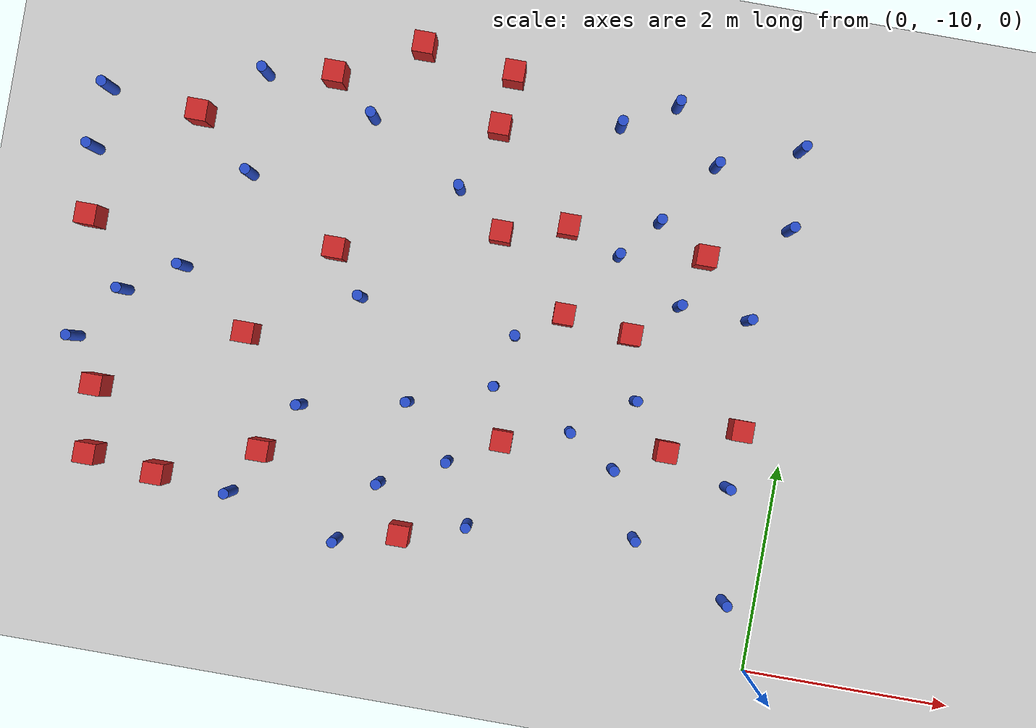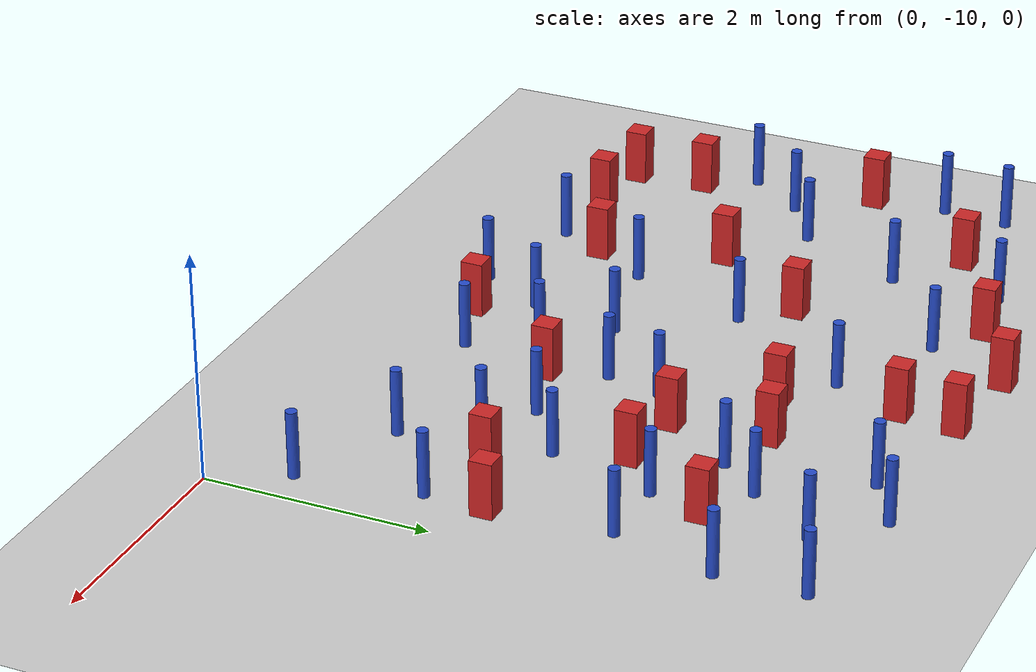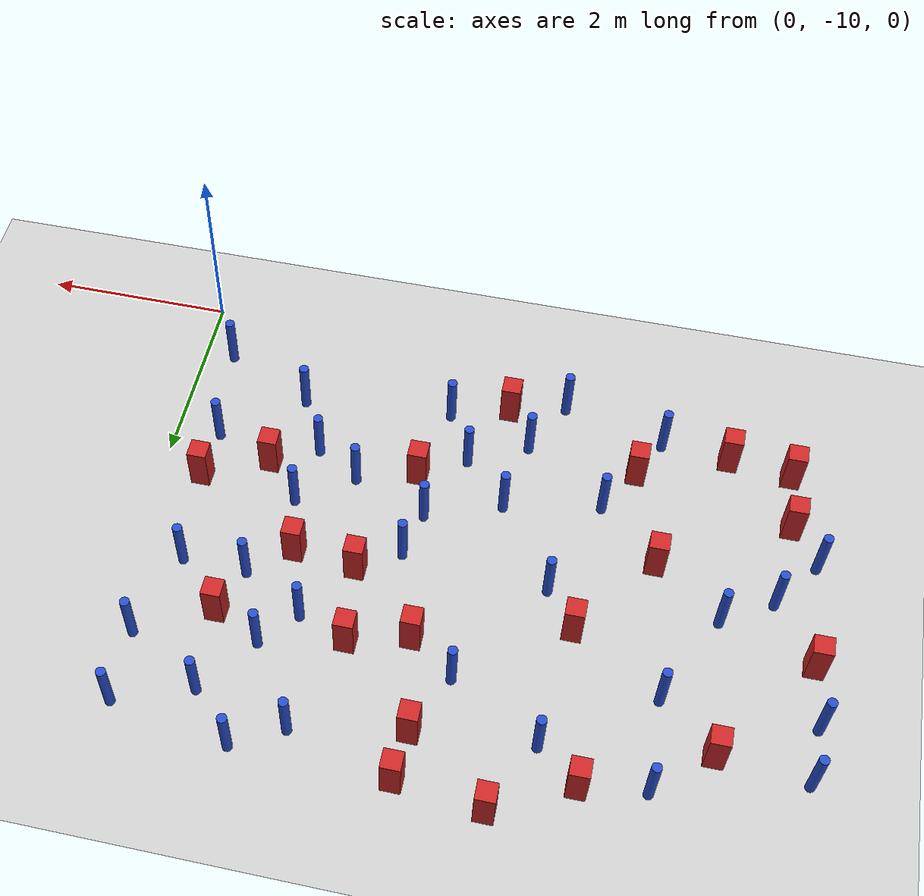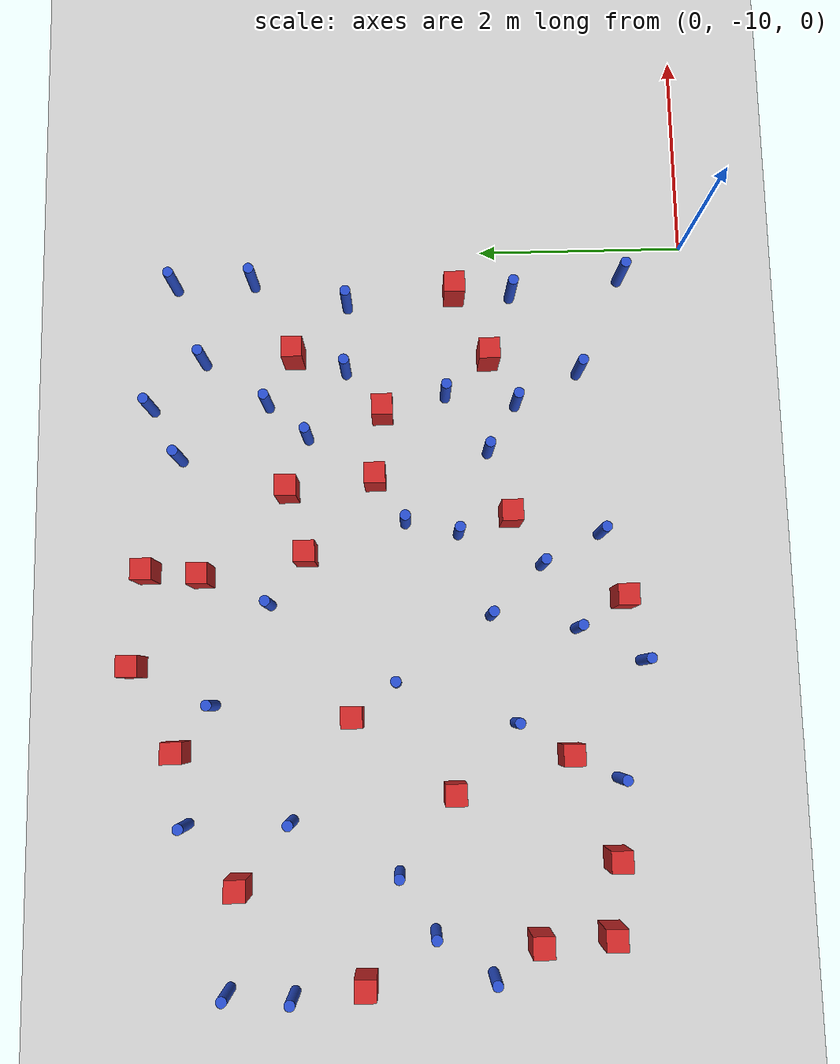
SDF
<sdf version="1.6">
 <world name="default">
  <model name="ground_plane">
   <static>1</static>
   <link name="link">
    <collision name="collision">
     <geometry><plane><normal>0 0 1</normal><size>100 100</size></plane></geometry>
     <surface><friction><ode><mu>100</mu><mu2>50</mu2></ode></friction></surface>
    </collision>
    <visual name="visual">
     <cast_shadows>0</cast_shadows>
     <geometry><plane><normal>0 0 1</normal><size>100 100</size></plane></geometry>
     <material>
      <ambient>1.0 1.0 1.0 1.0</ambient>
      <diffuse>0.8 0.8 0.8 1.0</diffuse>
      <specular>0.01 0.01 0.01 1.000000</specular>
     </material>
    </visual>
   </link>
  </model>
  <model name="pole_obstacle2">
   <static>true</static>
   <pose>-2.07227371819 -5.04771171933 7.38925637345e-09 -8.47170692798e-08 1.24976765033e-08 -1.74513093019e-07</pose>
   <link name="link">
    <pose>0 0 0.3 0 -0 0</pose>
    <inertial>
     <mass>1</mass>
     <inertia><ixx>0.145833</ixx><ixy>0</ixy><ixz>0</ixz><iyy>0.145833</iyy><iyz>0</iyz><izz>0.125</izz></inertia>
    </inertial>
    <collision name="collision">
     <geometry><cylinder><radius>0.05</radius><length>.6</length></cylinder></geometry>
    </collision>
    <visual name="visual">
     <geometry><cylinder><radius>0.05</radius><length>.6</length></cylinder></geometry>
     <material>
      <script><name>Gazebo/Blue</name><uri>file://media/materials/scripts/gazebo.material</uri></script>
     </material>
    </visual>
   </link>
  </model>
  <model name="pole_obstacle4">
   <static>true</static>
   <pose>-1.27591445963 -8.91077670129 7.38925637345e-09 -8.47170692798e-08 1.24976764881e-08 -1.74513093027e-07</pose>
   <link name="link">
    <pose>0 0 0.3 0 -0 0</pose>
    <inertial>
     <mass>1</mass>
     <inertia><ixx>0.145833</ixx><ixy>0</ixy><ixz>0</ixz><iyy>0.145833</iyy><iyz>0</iyz><izz>0.125</izz></inertia>
    </inertial>
    <collision name="collision">
     <geometry><cylinder><radius>0.05</radius><length>.6</length></cylinder></geometry>
    </collision>
    <visual name="visual">
     <geometry><cylinder><radius>0.05</radius><length>.6</length></cylinder></geometry>
     <material>
      <script><name>Gazebo/Blue</name><uri>file://media/materials/scripts/gazebo.material</uri></script>
     </material>
    </visual>
   </link>
  </model>
  <model name="pole_obstacle6">
   <static>true</static>
   <pose>-4.41659164661 -5.37724809579 7.38925637345e-09 -8.47170692796e-08 1.24976764786e-08 -1.74513093032e-07</pose>
   <link name="link">
    <pose>0 0 0.3 0 -0 0</pose>
    <inertial>
     <mass>1</mass>
     <inertia><ixx>0.145833</ixx><ixy>0</ixy><ixz>0</ixz><iyy>0.145833</iyy><iyz>0</iyz><izz>0.125</izz></inertia>
    </inertial>
    <collision name="collision">
     <geometry><cylinder><radius>0.05</radius><length>.6</length></cylinder></geometry>
    </collision>
    <visual name="visual">
     <geometry><cylinder><radius>0.05</radius><length>.6</length></cylinder></geometry>
     <material>
      <script><name>Gazebo/Blue</name><uri>file://media/materials/scripts/gazebo.material</uri></script>
     </material>
    </visual>
   </link>
  </model>
  <model name="square_post_obstacle10">
   <static>true</static>
   <pose>-1.11626901914 -8.03755662252 1.91545236811e-07 -7.35059704564e-06 1.12565212e-07 2.39332434364e-05</pose>
   <link name="link">
    <pose>0 0 0.25 0 -0 0</pose>
    <inertial>
     <mass>100</mass>
     <inertia>
      <ixx>0.166667</ixx>
      <ixy>0</ixy>
      <ixz>0</ixz>
      <iyy>0.166667</iyy>
      <iyz>0</iyz>
      <izz>0.166667</izz>
     </inertia>
    </inertial>
    <collision name="collision"><geometry><box><size>.2 .2 .5</size></box></geometry></collision>
    <visual name="visual">
     <geometry><box><size>.2 .2 .5</size></box></geometry>
     <material>
      <script><name>Gazebo/Red</name><uri>file://media/materials/scripts/gazebo.material</uri></script>
     </material>
    </visual>
   </link>
  </model>
  <model name="pole_obstacle11">
   <static>true</static>
   <pose>-1.58580821269 -8.29424901346 7.38925637345e-09 -8.47170692798e-08 1.24976764881e-08 -1.74513093027e-07</pose>
   <link name="link">
    <pose>0 0 0.3 0 -0 0</pose>
    <inertial>
     <mass>1</mass>
     <inertia><ixx>0.145833</ixx><ixy>0</ixy><ixz>0</ixz><iyy>0.145833</iyy><iyz>0</iyz><izz>0.125</izz></inertia>
    </inertial>
    <collision name="collision">
     <geometry><cylinder><radius>0.05</radius><length>.6</length></cylinder></geometry>
    </collision>
    <visual name="visual">
     <geometry><cylinder><radius>0.05</radius><length>.6</length></cylinder></geometry>
     <material>
      <script><name>Gazebo/Blue</name><uri>file://media/materials/scripts/gazebo.material</uri></script>
     </material>
    </visual>
   </link>
  </model>
  <model name="square_post_obstacle20">
   <static>true</static>
   <pose>-6.57853312437 -8.34904074265 1.91545236811e-07 -7.35059704564e-06 1.12565212e-07 2.39332434364e-05</pose>
   <link name="link">
    <pose>0 0 0.25 0 -0 0</pose>
    <inertial>
     <mass>100</mass>
     <inertia>
      <ixx>0.166667</ixx>
      <ixy>0</ixy>
      <ixz>0</ixz>
      <iyy>0.166667</iyy>
      <iyz>0</iyz>
      <izz>0.166667</izz>
     </inertia>
    </inertial>
    <collision name="collision"><geometry><box><size>.2 .2 .5</size></box></geometry></collision>
    <visual name="visual">
     <geometry><box><size>.2 .2 .5</size></box></geometry>
     <material>
      <script><name>Gazebo/Red</name><uri>file://media/materials/scripts/gazebo.material</uri></script>
     </material>
    </visual>
   </link>
  </model>
  <model name="pole_obstacle23">
   <static>true</static>
   <pose>-1.10968277763 -5.27178096615 7.38925637345e-09 -8.47170692799e-08 1.24976765033e-08 -1.74513093018e-07</pose>
   <link name="link">
    <pose>0 0 0.3 0 -0 0</pose>
    <inertial>
     <mass>1</mass>
     <inertia><ixx>0.145833</ixx><ixy>0</ixy><ixz>0</ixz><iyy>0.145833</iyy><iyz>0</iyz><izz>0.125</izz></inertia>
    </inertial>
    <collision name="collision">
     <geometry><cylinder><radius>0.05</radius><length>.6</length></cylinder></geometry>
    </collision>
    <visual name="visual">
     <geometry><cylinder><radius>0.05</radius><length>.6</length></cylinder></geometry>
     <material>
      <script><name>Gazebo/Blue</name><uri>file://media/materials/scripts/gazebo.material</uri></script>
     </material>
    </visual>
   </link>
  </model>
  <model name="pole_obstacle25">
   <static>true</static>
   <pose>-2.72447097869 -7.20253280972 7.38925637345e-09 -8.47170692798e-08 1.24976765033e-08 -1.74513093019e-07</pose>
   <link name="link">
    <pose>0 0 0.3 0 -0 0</pose>
    <inertial>
     <mass>1</mass>
     <inertia><ixx>0.145833</ixx><ixy>0</ixy><ixz>0</ixz><iyy>0.145833</iyy><iyz>0</iyz><izz>0.125</izz></inertia>
    </inertial>
    <collision name="collision">
     <geometry><cylinder><radius>0.05</radius><length>.6</length></cylinder></geometry>
    </collision>
    <visual name="visual">
     <geometry><cylinder><radius>0.05</radius><length>.6</length></cylinder></geometry>
     <material>
      <script><name>Gazebo/Blue</name><uri>file://media/materials/scripts/gazebo.material</uri></script>
     </material>
    </visual>
   </link>
  </model>
  <model name="square_post_obstacle33">
   <static>true</static>
   <pose>-2.67813964452 -8.20671515389 1.91545236811e-07 -7.35059704564e-06 1.12565212e-07 2.39332434364e-05</pose>
   <link name="link">
    <pose>0 0 0.25 0 -0 0</pose>
    <inertial>
     <mass>100</mass>
     <inertia>
      <ixx>0.166667</ixx>
      <ixy>0</ixy>
      <ixz>0</ixz>
      <iyy>0.166667</iyy>
      <iyz>0</iyz>
      <izz>0.166667</izz>
     </inertia>
    </inertial>
    <collision name="collision"><geometry><box><size>.2 .2 .5</size></box></geometry></collision>
    <visual name="visual">
     <geometry><box><size>.2 .2 .5</size></box></geometry>
     <material>
      <script><name>Gazebo/Red</name><uri>file://media/materials/scripts/gazebo.material</uri></script>
     </material>
    </visual>
   </link>
  </model>
  <model name="pole_obstacle34">
   <static>true</static>
   <pose>-0.31500901669 -5.75066021002 7.38925637345e-09 -8.471706928e-08 1.24976765079e-08 -1.74513093015e-07</pose>
   <link name="link">
    <pose>0 0 0.3 0 -0 0</pose>
    <inertial>
     <mass>1</mass>
     <inertia><ixx>0.145833</ixx><ixy>0</ixy><ixz>0</ixz><iyy>0.145833</iyy><iyz>0</iyz><izz>0.125</izz></inertia>
    </inertial>
    <collision name="collision">
     <geometry><cylinder><radius>0.05</radius><length>.6</length></cylinder></geometry>
    </collision>
    <visual name="visual">
     <geometry><cylinder><radius>0.05</radius><length>.6</length></cylinder></geometry>
     <material>
      <script><name>Gazebo/Blue</name><uri>file://media/materials/scripts/gazebo.material</uri></script>
     </material>
    </visual>
   </link>
  </model>
  <model name="pole_obstacle39">
   <static>true</static>
   <pose>-5.95816179354 -7.0895975406 7.38925637345e-09 -8.47170692796e-08 1.24976764786e-08 -1.74513093032e-07</pose>
   <link name="link">
    <pose>0 0 0.3 0 -0 0</pose>
    <inertial>
     <mass>1</mass>
     <inertia><ixx>0.145833</ixx><ixy>0</ixy><ixz>0</ixz><iyy>0.145833</iyy><iyz>0</iyz><izz>0.125</izz></inertia>
    </inertial>
    <collision name="collision">
     <geometry><cylinder><radius>0.05</radius><length>.6</length></cylinder></geometry>
    </collision>
    <visual name="visual">
     <geometry><cylinder><radius>0.05</radius><length>.6</length></cylinder></geometry>
     <material>
      <script><name>Gazebo/Blue</name><uri>file://media/materials/scripts/gazebo.material</uri></script>
     </material>
    </visual>
   </link>
  </model>
  <model name="pole_obstacle40">
   <static>true</static>
   <pose>-4.63210153407 -8.20008289842 7.38925637345e-09 -8.471706928e-08 1.24976765081e-08 -1.74513093015e-07</pose>
   <link name="link">
    <pose>0 0 0.3 0 -0 0</pose>
    <inertial>
     <mass>1</mass>
     <inertia><ixx>0.145833</ixx><ixy>0</ixy><ixz>0</ixz><iyy>0.145833</iyy><iyz>0</iyz><izz>0.125</izz></inertia>
    </inertial>
    <collision name="collision">
     <geometry><cylinder><radius>0.05</radius><length>.6</length></cylinder></geometry>
    </collision>
    <visual name="visual">
     <geometry><cylinder><radius>0.05</radius><length>.6</length></cylinder></geometry>
     <material>
      <script><name>Gazebo/Blue</name><uri>file://media/materials/scripts/gazebo.material</uri></script>
     </material>
    </visual>
   </link>
  </model>
  <model name="pole_obstacle42">
   <static>true</static>
   <pose>-5.48187661876 -6.10743323262 7.38925637345e-09 -8.47170692796e-08 1.24976764786e-08 -1.74513093032e-07</pose>
   <link name="link">
    <pose>0 0 0.3 0 -0 0</pose>
    <inertial>
     <mass>1</mass>
     <inertia><ixx>0.145833</ixx><ixy>0</ixy><ixz>0</ixz><iyy>0.145833</iyy><iyz>0</iyz><izz>0.125</izz></inertia>
    </inertial>
    <collision name="collision">
     <geometry><cylinder><radius>0.05</radius><length>.6</length></cylinder></geometry>
    </collision>
    <visual name="visual">
     <geometry><cylinder><radius>0.05</radius><length>.6</length></cylinder></geometry>
     <material>
      <script><name>Gazebo/Blue</name><uri>file://media/materials/scripts/gazebo.material</uri></script>
     </material>
    </visual>
   </link>
  </model>
  <model name="square_post_obstacle45">
   <static>true</static>
   <pose>-6.90687574242 -6.7731511676 1.91545236811e-07 -7.35059704564e-06 1.12565212e-07 2.39332434364e-05</pose>
   <link name="link">
    <pose>0 0 0.25 0 -0 0</pose>
    <inertial>
     <mass>100</mass>
     <inertia>
      <ixx>0.166667</ixx>
      <ixy>0</ixy>
      <ixz>0</ixz>
      <iyy>0.166667</iyy>
      <iyz>0</iyz>
      <izz>0.166667</izz>
     </inertia>
    </inertial>
    <collision name="collision"><geometry><box><size>.2 .2 .5</size></box></geometry></collision>
    <visual name="visual">
     <geometry><box><size>.2 .2 .5</size></box></geometry>
     <material>
      <script><name>Gazebo/Red</name><uri>file://media/materials/scripts/gazebo.material</uri></script>
     </material>
    </visual>
   </link>
  </model>
  <model name="square_post_obstacle46">
   <static>true</static>
   <pose>-5.25582139195 -7.61330775972 1.91545236811e-07 -7.35059704564e-06 1.12565212e-07 2.39332434364e-05</pose>
   <link name="link">
    <pose>0 0 0.25 0 -0 0</pose>
    <inertial>
     <mass>100</mass>
     <inertia>
      <ixx>0.166667</ixx>
      <ixy>0</ixy>
      <ixz>0</ixz>
      <iyy>0.166667</iyy>
      <iyz>0</iyz>
      <izz>0.166667</izz>
     </inertia>
    </inertial>
    <collision name="collision"><geometry><box><size>.2 .2 .5</size></box></geometry></collision>
    <visual name="visual">
     <geometry><box><size>.2 .2 .5</size></box></geometry>
     <material>
      <script><name>Gazebo/Red</name><uri>file://media/materials/scripts/gazebo.material</uri></script>
     </material>
    </visual>
   </link>
  </model>
  <model name="square_post_obstacle48">
   <static>true</static>
   <pose>-2.39960484769 -6.08432362472 1.91545236811e-07 -7.35059704564e-06 1.12565212e-07 2.39332434364e-05</pose>
   <link name="link">
    <pose>0 0 0.25 0 -0 0</pose>
    <inertial>
     <mass>100</mass>
     <inertia>
      <ixx>0.166667</ixx>
      <ixy>0</ixy>
      <ixz>0</ixz>
      <iyy>0.166667</iyy>
      <iyz>0</iyz>
      <izz>0.166667</izz>
     </inertia>
    </inertial>
    <collision name="collision"><geometry><box><size>.2 .2 .5</size></box></geometry></collision>
    <visual name="visual">
     <geometry><box><size>.2 .2 .5</size></box></geometry>
     <material>
      <script><name>Gazebo/Red</name><uri>file://media/materials/scripts/gazebo.material</uri></script>
     </material>
    </visual>
   </link>
  </model>
  <model name="pole_obstacle55">
   <static>true</static>
   <pose>-2.86550731121 -9.06062960712 7.38925637345e-09 -8.47170692793e-08 1.24976764408e-08 -1.74513093041e-07</pose>
   <link name="link">
    <pose>0 0 0.3 0 -0 0</pose>
    <inertial>
     <mass>1</mass>
     <inertia><ixx>0.145833</ixx><ixy>0</ixy><ixz>0</ixz><iyy>0.145833</iyy><iyz>0</iyz><izz>0.125</izz></inertia>
    </inertial>
    <collision name="collision">
     <geometry><cylinder><radius>0.05</radius><length>.6</length></cylinder></geometry>
    </collision>
    <visual name="visual">
     <geometry><cylinder><radius>0.05</radius><length>.6</length></cylinder></geometry>
     <material>
      <script><name>Gazebo/Blue</name><uri>file://media/materials/scripts/gazebo.material</uri></script>
     </material>
    </visual>
   </link>
  </model>
  <model name="square_post_obstacle59">
   <static>true</static>
   <pose>-1.06358824567 -6.14875667688 1.91545236811e-07 -7.35059704564e-06 1.12565212e-07 2.39332434364e-05</pose>
   <link name="link">
    <pose>0 0 0.25 0 -0 0</pose>
    <inertial>
     <mass>100</mass>
     <inertia>
      <ixx>0.166667</ixx>
      <ixy>0</ixy>
      <ixz>0</ixz>
      <iyy>0.166667</iyy>
      <iyz>0</iyz>
      <izz>0.166667</izz>
     </inertia>
    </inertial>
    <collision name="collision"><geometry><box><size>.2 .2 .5</size></box></geometry></collision>
    <visual name="visual">
     <geometry><box><size>.2 .2 .5</size></box></geometry>
     <material>
      <script><name>Gazebo/Red</name><uri>file://media/materials/scripts/gazebo.material</uri></script>
     </material>
    </visual>
   </link>
  </model>
  <model name="square_post_obstacle66">
   <static>true</static>
   <pose>-3.16054212467 -4.74713872803 1.91545236811e-07 -7.35059704564e-06 1.12565212e-07 2.39332434364e-05</pose>
   <link name="link">
    <pose>0 0 0.25 0 -0 0</pose>
    <inertial>
     <mass>100</mass>
     <inertia>
      <ixx>0.166667</ixx>
      <ixy>0</ixy>
      <ixz>0</ixz>
      <iyy>0.166667</iyy>
      <iyz>0</iyz>
      <izz>0.166667</izz>
     </inertia>
    </inertial>
    <collision name="collision"><geometry><box><size>.2 .2 .5</size></box></geometry></collision>
    <visual name="visual">
     <geometry><box><size>.2 .2 .5</size></box></geometry>
     <material>
      <script><name>Gazebo/Red</name><uri>file://media/materials/scripts/gazebo.material</uri></script>
     </material>
    </visual>
   </link>
  </model>
  <model name="square_post_obstacle72">
   <static>true</static>
   <pose>-4.92667936365 -8.6886703658 1.91545236811e-07 -7.35059704564e-06 1.12565212e-07 2.39332434364e-05</pose>
   <link name="link">
    <pose>0 0 0.25 0 -0 0</pose>
    <inertial>
     <mass>100</mass>
     <inertia>
      <ixx>0.166667</ixx>
      <ixy>0</ixy>
      <ixz>0</ixz>
      <iyy>0.166667</iyy>
      <iyz>0</iyz>
      <izz>0.166667</izz>
     </inertia>
    </inertial>
    <collision name="collision"><geometry><box><size>.2 .2 .5</size></box></geometry></collision>
    <visual name="visual">
     <geometry><box><size>.2 .2 .5</size></box></geometry>
     <material>
      <script><name>Gazebo/Red</name><uri>file://media/materials/scripts/gazebo.material</uri></script>
     </material>
    </visual>
   </link>
  </model>
  <model name="pole_obstacle73">
   <static>true</static>
   <pose>-3.48792732842 -5.9057790446 7.38925637345e-09 -8.47170692798e-08 1.24976765033e-08 -1.74513093019e-07</pose>
   <link name="link">
    <pose>0 0 0.3 0 -0 0</pose>
    <inertial>
     <mass>1</mass>
     <inertia><ixx>0.145833</ixx><ixy>0</ixy><ixz>0</ixz><iyy>0.145833</iyy><iyz>0</iyz><izz>0.125</izz></inertia>
    </inertial>
    <collision name="collision">
     <geometry><cylinder><radius>0.05</radius><length>.6</length></cylinder></geometry>
    </collision>
    <visual name="visual">
     <geometry><cylinder><radius>0.05</radius><length>.6</length></cylinder></geometry>
     <material>
      <script><name>Gazebo/Blue</name><uri>file://media/materials/scripts/gazebo.material</uri></script>
     </material>
    </visual>
   </link>
  </model>
  <model name="square_post_obstacle77">
   <static>true</static>
   <pose>-3.02353905366 -6.25548564265 1.91545236811e-07 -7.35059704564e-06 1.12565212e-07 2.39332434364e-05</pose>
   <link name="link">
    <pose>0 0 0.25 0 -0 0</pose>
    <inertial>
     <mass>100</mass>
     <inertia>
      <ixx>0.166667</ixx>
      <ixy>0</ixy>
      <ixz>0</ixz>
      <iyy>0.166667</iyy>
      <iyz>0</iyz>
      <izz>0.166667</izz>
     </inertia>
    </inertial>
    <collision name="collision"><geometry><box><size>.2 .2 .5</size></box></geometry></collision>
    <visual name="visual">
     <geometry><box><size>.2 .2 .5</size></box></geometry>
     <material>
      <script><name>Gazebo/Red</name><uri>file://media/materials/scripts/gazebo.material</uri></script>
     </material>
    </visual>
   </link>
  </model>
  <model name="square_post_obstacle78">
   <static>true</static>
   <pose>-5.86536291043 -9.07385538474 1.91545236811e-07 -7.35059704564e-06 1.12565212e-07 2.39332434364e-05</pose>
   <link name="link">
    <pose>0 0 0.25 0 -0 0</pose>
    <inertial>
     <mass>100</mass>
     <inertia>
      <ixx>0.166667</ixx>
      <ixy>0</ixy>
      <ixz>0</ixz>
      <iyy>0.166667</iyy>
      <iyz>0</iyz>
      <izz>0.166667</izz>
     </inertia>
    </inertial>
    <collision name="collision"><geometry><box><size>.2 .2 .5</size></box></geometry></collision>
    <visual name="visual">
     <geometry><box><size>.2 .2 .5</size></box></geometry>
     <material>
      <script><name>Gazebo/Red</name><uri>file://media/materials/scripts/gazebo.material</uri></script>
     </material>
    </visual>
   </link>
  </model>
  <model name="pole_obstacle89">
   <static>true</static>
   <pose>-6.9486895236 -5.52909381908 7.38925637345e-09 -8.47170692796e-08 1.24976764786e-08 -1.74513093032e-07</pose>
   <link name="link">
    <pose>0 0 0.3 0 -0 0</pose>
    <inertial>
     <mass>1</mass>
     <inertia><ixx>0.145833</ixx><ixy>0</ixy><ixz>0</ixz><iyy>0.145833</iyy><iyz>0</iyz><izz>0.125</izz></inertia>
    </inertial>
    <collision name="collision">
     <geometry><cylinder><radius>0.05</radius><length>.6</length></cylinder></geometry>
    </collision>
    <visual name="visual">
     <geometry><cylinder><radius>0.05</radius><length>.6</length></cylinder></geometry>
     <material>
      <script><name>Gazebo/Blue</name><uri>file://media/materials/scripts/gazebo.material</uri></script>
     </material>
    </visual>
   </link>
  </model>
  <model name="square_post_obstacle82">
   <static>true</static>
   <pose>-0.449956347793 -7.71939835341 1.91545236811e-07 -7.35059704564e-06 1.12565212e-07 2.39332434364e-05</pose>
   <link name="link">
    <pose>0 0 0.25 0 -0 0</pose>
    <inertial>
     <mass>100</mass>
     <inertia>
      <ixx>0.166667</ixx>
      <ixy>0</ixy>
      <ixz>0</ixz>
      <iyy>0.166667</iyy>
      <iyz>0</iyz>
      <izz>0.166667</izz>
     </inertia>
    </inertial>
    <collision name="collision"><geometry><box><size>.2 .2 .5</size></box></geometry></collision>
    <visual name="visual">
     <geometry><box><size>.2 .2 .5</size></box></geometry>
     <material>
      <script><name>Gazebo/Red</name><uri>file://media/materials/scripts/gazebo.material</uri></script>
     </material>
    </visual>
   </link>
  </model>
  <model name="pole_obstacle90">
   <static>true</static>
   <pose>-6.47782988153 -7.4086822543 7.38925637345e-09 -8.47170692796e-08 1.24976764786e-08 -1.74513093032e-07</pose>
   <link name="link">
    <pose>0 0 0.3 0 -0 0</pose>
    <inertial>
     <mass>1</mass>
     <inertia><ixx>0.145833</ixx><ixy>0</ixy><ixz>0</ixz><iyy>0.145833</iyy><iyz>0</iyz><izz>0.125</izz></inertia>
    </inertial>
    <collision name="collision">
     <geometry><cylinder><radius>0.05</radius><length>.6</length></cylinder></geometry>
    </collision>
    <visual name="visual">
     <geometry><cylinder><radius>0.05</radius><length>.6</length></cylinder></geometry>
     <material>
      <script><name>Gazebo/Blue</name><uri>file://media/materials/scripts/gazebo.material</uri></script>
     </material>
    </visual>
   </link>
  </model>
  <model name="pole_obstacle92">
   <static>true</static>
   <pose>-2.84070073161 -7.70885367556 7.38925637345e-09 -8.47170692798e-08 1.24976765033e-08 -1.74513093019e-07</pose>
   <link name="link">
    <pose>0 0 0.3 0 -0 0</pose>
    <inertial>
     <mass>1</mass>
     <inertia><ixx>0.145833</ixx><ixy>0</ixy><ixz>0</ixz><iyy>0.145833</iyy><iyz>0</iyz><izz>0.125</izz></inertia>
    </inertial>
    <collision name="collision">
     <geometry><cylinder><radius>0.05</radius><length>.6</length></cylinder></geometry>
    </collision>
    <visual name="visual">
     <geometry><cylinder><radius>0.05</radius><length>.6</length></cylinder></geometry>
     <material>
      <script><name>Gazebo/Blue</name><uri>file://media/materials/scripts/gazebo.material</uri></script>
     </material>
    </visual>
   </link>
  </model>
  <model name="pole_obstacle95">
   <static>true</static>
   <pose>-3.76365497825 -8.80448607397 7.38925637345e-09 -8.47170692799e-08 1.24976765012e-08 -1.74513093021e-07</pose>
   <link name="link">
    <pose>0 0 0.3 0 -0 0</pose>
    <inertial>
     <mass>1</mass>
     <inertia><ixx>0.145833</ixx><ixy>0</ixy><ixz>0</ixz><iyy>0.145833</iyy><iyz>0</iyz><izz>0.125</izz></inertia>
    </inertial>
    <collision name="collision">
     <geometry><cylinder><radius>0.05</radius><length>.6</length></cylinder></geometry>
    </collision>
    <visual name="visual">
     <geometry><cylinder><radius>0.05</radius><length>.6</length></cylinder></geometry>
     <material>
      <script><name>Gazebo/Blue</name><uri>file://media/materials/scripts/gazebo.material</uri></script>
     </material>
    </visual>
   </link>
  </model>
  <model name="pole_obstacle101">
   <static>true</static>
   <pose>-1.88030814467 -6.27488019002 7.38925637345e-09 -8.47170692799e-08 1.24976765033e-08 -1.74513093018e-07</pose>
   <link name="link">
    <pose>0 0 0.3 0 -0 0</pose>
    <inertial>
     <mass>1</mass>
     <inertia><ixx>0.145833</ixx><ixy>0</ixy><ixz>0</ixz><iyy>0.145833</iyy><iyz>0</iyz><izz>0.125</izz></inertia>
    </inertial>
    <collision name="collision">
     <geometry><cylinder><radius>0.05</radius><length>.6</length></cylinder></geometry>
    </collision>
    <visual name="visual">
     <geometry><cylinder><radius>0.05</radius><length>.6</length></cylinder></geometry>
     <material>
      <script><name>Gazebo/Blue</name><uri>file://media/materials/scripts/gazebo.material</uri></script>
     </material>
    </visual>
   </link>
  </model>
  <model name="pole_obstacle105">
   <static>true</static>
   <pose>-3.62541381932 -7.99656647016 7.38925637345e-09 -8.47170692799e-08 1.24976764946e-08 -1.74513093024e-07</pose>
   <link name="link">
    <pose>0 0 0.3 0 -0 0</pose>
    <inertial>
     <mass>1</mass>
     <inertia><ixx>0.145833</ixx><ixy>0</ixy><ixz>0</ixz><iyy>0.145833</iyy><iyz>0</iyz><izz>0.125</izz></inertia>
    </inertial>
    <collision name="collision">
     <geometry><cylinder><radius>0.05</radius><length>.6</length></cylinder></geometry>
    </collision>
    <visual name="visual">
     <geometry><cylinder><radius>0.05</radius><length>.6</length></cylinder></geometry>
     <material>
      <script><name>Gazebo/Blue</name><uri>file://media/materials/scripts/gazebo.material</uri></script>
     </material>
    </visual>
   </link>
  </model>
  <model name="square_post_obstacle99">
   <static>true</static>
   <pose>-6.04506428307 -5.62515366755 1.91545236811e-07 -7.35059704564e-06 1.12565212e-07 2.39332434364e-05</pose>
   <link name="link">
    <pose>0 0 0.25 0 -0 0</pose>
    <inertial>
     <mass>100</mass>
     <inertia>
      <ixx>0.166667</ixx>
      <ixy>0</ixy>
      <ixz>0</ixz>
      <iyy>0.166667</iyy>
      <iyz>0</iyz>
      <izz>0.166667</izz>
     </inertia>
    </inertial>
    <collision name="collision"><geometry><box><size>.2 .2 .5</size></box></geometry></collision>
    <visual name="visual">
     <geometry><box><size>.2 .2 .5</size></box></geometry>
     <material>
      <script><name>Gazebo/Red</name><uri>file://media/materials/scripts/gazebo.material</uri></script>
     </material>
    </visual>
   </link>
  </model>
  <model name="square_post_obstacle100">
   <static>true</static>
   <pose>-3.4842530801 -9.2494284536 1.91545236811e-07 -7.35059704564e-06 1.12565212e-07 2.39332434364e-05</pose>
   <link name="link">
    <pose>0 0 0.25 0 -0 0</pose>
    <inertial>
     <mass>100</mass>
     <inertia>
      <ixx>0.166667</ixx>
      <ixy>0</ixy>
      <ixz>0</ixz>
      <iyy>0.166667</iyy>
      <iyz>0</iyz>
      <izz>0.166667</izz>
     </inertia>
    </inertial>
    <collision name="collision"><geometry><box><size>.2 .2 .5</size></box></geometry></collision>
    <visual name="visual">
     <geometry><box><size>.2 .2 .5</size></box></geometry>
     <material>
      <script><name>Gazebo/Red</name><uri>file://media/materials/scripts/gazebo.material</uri></script>
     </material>
    </visual>
   </link>
  </model>
  <model name="square_post_obstacle105">
   <static>true</static>
   <pose>-2.29990412747 -6.92235684745 1.91545236811e-07 -7.35059704564e-06 1.12565212e-07 2.39332434364e-05</pose>
   <link name="link">
    <pose>0 0 0.25 0 -0 0</pose>
    <inertial>
     <mass>100</mass>
     <inertia>
      <ixx>0.166667</ixx>
      <ixy>0</ixy>
      <ixz>0</ixz>
      <iyy>0.166667</iyy>
      <iyz>0</iyz>
      <izz>0.166667</izz>
     </inertia>
    </inertial>
    <collision name="collision"><geometry><box><size>.2 .2 .5</size></box></geometry></collision>
    <visual name="visual">
     <geometry><box><size>.2 .2 .5</size></box></geometry>
     <material>
      <script><name>Gazebo/Red</name><uri>file://media/materials/scripts/gazebo.material</uri></script>
     </material>
    </visual>
   </link>
  </model>
  <model name="square_post_obstacle110">
   <static>true</static>
   <pose>-1.64299552924 -7.00122266762 1.91545236811e-07 -7.35059704564e-06 1.12565212e-07 2.39332434364e-05</pose>
   <link name="link">
    <pose>0 0 0.25 0 -0 0</pose>
    <inertial>
     <mass>100</mass>
     <inertia>
      <ixx>0.166667</ixx>
      <ixy>0</ixy>
      <ixz>0</ixz>
      <iyy>0.166667</iyy>
      <iyz>0</iyz>
      <izz>0.166667</izz>
     </inertia>
    </inertial>
    <collision name="collision"><geometry><box><size>.2 .2 .5</size></box></geometry></collision>
    <visual name="visual">
     <geometry><box><size>.2 .2 .5</size></box></geometry>
     <material>
      <script><name>Gazebo/Red</name><uri>file://media/materials/scripts/gazebo.material</uri></script>
     </material>
    </visual>
   </link>
  </model>
  <model name="pole_obstacle121">
   <static>true</static>
   <pose>-5.49402964343 -5.13471134031 7.38925637345e-09 -8.47170692796e-08 1.24976764786e-08 -1.74513093032e-07</pose>
   <link name="link">
    <pose>0 0 0.3 0 -0 0</pose>
    <inertial>
     <mass>1</mass>
     <inertia><ixx>0.145833</ixx><ixy>0</ixy><ixz>0</ixz><iyy>0.145833</iyy><iyz>0</iyz><izz>0.125</izz></inertia>
    </inertial>
    <collision name="collision">
     <geometry><cylinder><radius>0.05</radius><length>.6</length></cylinder></geometry>
    </collision>
    <visual name="visual">
     <geometry><cylinder><radius>0.05</radius><length>.6</length></cylinder></geometry>
     <material>
      <script><name>Gazebo/Blue</name><uri>file://media/materials/scripts/gazebo.material</uri></script>
     </material>
    </visual>
   </link>
  </model>
  <model name="pole_obstacle125">
   <static>true</static>
   <pose>-4.24019544653 -7.0887610087 7.38925637345e-09 -8.47170692796e-08 1.24976764786e-08 -1.74513093032e-07</pose>
   <link name="link">
    <pose>0 0 0.3 0 -0 0</pose>
    <inertial>
     <mass>1</mass>
     <inertia><ixx>0.145833</ixx><ixy>0</ixy><ixz>0</ixz><iyy>0.145833</iyy><iyz>0</iyz><izz>0.125</izz></inertia>
    </inertial>
    <collision name="collision">
     <geometry><cylinder><radius>0.05</radius><length>.6</length></cylinder></geometry>
    </collision>
    <visual name="visual">
     <geometry><cylinder><radius>0.05</radius><length>.6</length></cylinder></geometry>
     <material>
      <script><name>Gazebo/Blue</name><uri>file://media/materials/scripts/gazebo.material</uri></script>
     </material>
    </visual>
   </link>
  </model>
  <model name="pole_obstacle128">
   <static>true</static>
   <pose>-3.1552057582 -8.4917828347 7.38925637345e-09 -8.47170692799e-08 1.24976765012e-08 -1.74513093021e-07</pose>
   <link name="link">
    <pose>0 0 0.3 0 -0 0</pose>
    <inertial>
     <mass>1</mass>
     <inertia><ixx>0.145833</ixx><ixy>0</ixy><ixz>0</ixz><iyy>0.145833</iyy><iyz>0</iyz><izz>0.125</izz></inertia>
    </inertial>
    <collision name="collision">
     <geometry><cylinder><radius>0.05</radius><length>.6</length></cylinder></geometry>
    </collision>
    <visual name="visual">
     <geometry><cylinder><radius>0.05</radius><length>.6</length></cylinder></geometry>
     <material>
      <script><name>Gazebo/Blue</name><uri>file://media/materials/scripts/gazebo.material</uri></script>
     </material>
    </visual>
   </link>
  </model>
  <model name="pole_obstacle134">
   <static>true</static>
   <pose>-1.55162116299 -5.89168939726 7.38925637345e-09 -8.47170692799e-08 1.24976765033e-08 -1.74513093018e-07</pose>
   <link name="link">
    <pose>0 0 0.3 0 -0 0</pose>
    <inertial>
     <mass>1</mass>
     <inertia><ixx>0.145833</ixx><ixy>0</ixy><ixz>0</ixz><iyy>0.145833</iyy><iyz>0</iyz><izz>0.125</izz></inertia>
    </inertial>
    <collision name="collision">
     <geometry><cylinder><radius>0.05</radius><length>.6</length></cylinder></geometry>
    </collision>
    <visual name="visual">
     <geometry><cylinder><radius>0.05</radius><length>.6</length></cylinder></geometry>
     <material>
      <script><name>Gazebo/Blue</name><uri>file://media/materials/scripts/gazebo.material</uri></script>
     </material>
    </visual>
   </link>
  </model>
  <model name="pole_obstacle135">
   <static>true</static>
   <pose>-0.325851294708 -9.35779675764 7.38925637345e-09 -8.47170692796e-08 1.24976764724e-08 -1.74513093036e-07</pose>
   <link name="link">
    <pose>0 0 0.3 0 -0 0</pose>
    <inertial>
     <mass>1</mass>
     <inertia><ixx>0.145833</ixx><ixy>0</ixy><ixz>0</ixz><iyy>0.145833</iyy><iyz>0</iyz><izz>0.125</izz></inertia>
    </inertial>
    <collision name="collision">
     <geometry><cylinder><radius>0.05</radius><length>.6</length></cylinder></geometry>
    </collision>
    <visual name="visual">
     <geometry><cylinder><radius>0.05</radius><length>.6</length></cylinder></geometry>
     <material>
      <script><name>Gazebo/Blue</name><uri>file://media/materials/scripts/gazebo.material</uri></script>
     </material>
    </visual>
   </link>
  </model>
  <model name="square_post_obstacle132">
   <static>true</static>
   <pose>-3.20930044392 -5.26380140266 1.91545236811e-07 -7.35059704564e-06 1.12565212e-07 2.39332434364e-05</pose>
   <link name="link">
    <pose>0 0 0.25 0 -0 0</pose>
    <inertial>
     <mass>100</mass>
     <inertia>
      <ixx>0.166667</ixx>
      <ixy>0</ixy>
      <ixz>0</ixz>
      <iyy>0.166667</iyy>
      <iyz>0</iyz>
      <izz>0.166667</izz>
     </inertia>
    </inertial>
    <collision name="collision"><geometry><box><size>.2 .2 .5</size></box></geometry></collision>
    <visual name="visual">
     <geometry><box><size>.2 .2 .5</size></box></geometry>
     <material>
      <script><name>Gazebo/Red</name><uri>file://media/materials/scripts/gazebo.material</uri></script>
     </material>
    </visual>
   </link>
  </model>
  <model name="pole_obstacle148">
   <static>true</static>
   <pose>-6.86509760808 -7.92663198158 7.38925637345e-09 -8.47170692796e-08 1.24976764786e-08 -1.74513093032e-07</pose>
   <link name="link">
    <pose>0 0 0.3 0 -0 0</pose>
    <inertial>
     <mass>1</mass>
     <inertia><ixx>0.145833</ixx><ixy>0</ixy><ixz>0</ixz><iyy>0.145833</iyy><iyz>0</iyz><izz>0.125</izz></inertia>
    </inertial>
    <collision name="collision">
     <geometry><cylinder><radius>0.05</radius><length>.6</length></cylinder></geometry>
    </collision>
    <visual name="visual">
     <geometry><cylinder><radius>0.05</radius><length>.6</length></cylinder></geometry>
     <material>
      <script><name>Gazebo/Blue</name><uri>file://media/materials/scripts/gazebo.material</uri></script>
     </material>
    </visual>
   </link>
  </model>
  <model name="square_post_obstacle140">
   <static>true</static>
   <pose>-6.52890185273 -8.99655977949 1.91545236811e-07 -7.35059704564e-06 1.12565212e-07 2.39332434364e-05</pose>
   <link name="link">
    <pose>0 0 0.25 0 -0 0</pose>
    <inertial>
     <mass>100</mass>
     <inertia>
      <ixx>0.166667</ixx>
      <ixy>0</ixy>
      <ixz>0</ixz>
      <iyy>0.166667</iyy>
      <iyz>0</iyz>
      <izz>0.166667</izz>
     </inertia>
    </inertial>
    <collision name="collision"><geometry><box><size>.2 .2 .5</size></box></geometry></collision>
    <visual name="visual">
     <geometry><box><size>.2 .2 .5</size></box></geometry>
     <material>
      <script><name>Gazebo/Red</name><uri>file://media/materials/scripts/gazebo.material</uri></script>
     </material>
    </visual>
   </link>
  </model>
  <model name="pole_obstacle163">
   <static>true</static>
   <pose>-2.05012638681 -8.01358659058 7.38925637345e-09 -8.47170692795e-08 1.24976764645e-08 -1.74513093041e-07</pose>
   <link name="link">
    <pose>0 0 0.3 0 -0 0</pose>
    <inertial>
     <mass>1</mass>
     <inertia><ixx>0.145833</ixx><ixy>0</ixy><ixz>0</ixz><iyy>0.145833</iyy><iyz>0</iyz><izz>0.125</izz></inertia>
    </inertial>
    <collision name="collision">
     <geometry><cylinder><radius>0.05</radius><length>.6</length></cylinder></geometry>
    </collision>
    <visual name="visual">
     <geometry><cylinder><radius>0.05</radius><length>.6</length></cylinder></geometry>
     <material>
      <script><name>Gazebo/Blue</name><uri>file://media/materials/scripts/gazebo.material</uri></script>
     </material>
    </visual>
   </link>
  </model>
  <model name="square_post_obstacle159">
   <static>true</static>
   <pose>-4.83634176039 -5.04450123954 1.91545236811e-07 -7.35059704564e-06 1.12565212e-07 2.39332434364e-05</pose>
   <link name="link">
    <pose>0 0 0.25 0 -0 0</pose>
    <inertial>
     <mass>100</mass>
     <inertia>
      <ixx>0.166667</ixx>
      <ixy>0</ixy>
      <ixz>0</ixz>
      <iyy>0.166667</iyy>
      <iyz>0</iyz>
      <izz>0.166667</izz>
     </inertia>
    </inertial>
    <collision name="collision"><geometry><box><size>.2 .2 .5</size></box></geometry></collision>
    <visual name="visual">
     <geometry><box><size>.2 .2 .5</size></box></geometry>
     <material>
      <script><name>Gazebo/Red</name><uri>file://media/materials/scripts/gazebo.material</uri></script>
     </material>
    </visual>
   </link>
  </model>
  <model name="pole_obstacle167">
   <static>true</static>
   <pose>-6.99014281391 -6.12035408924 7.38925637345e-09 -8.47170692796e-08 1.24976764786e-08 -1.74513093032e-07</pose>
   <link name="link">
    <pose>0 0 0.3 0 -0 0</pose>
    <inertial>
     <mass>1</mass>
     <inertia><ixx>0.145833</ixx><ixy>0</ixy><ixz>0</ixz><iyy>0.145833</iyy><iyz>0</iyz><izz>0.125</izz></inertia>
    </inertial>
    <collision name="collision">
     <geometry><cylinder><radius>0.05</radius><length>.6</length></cylinder></geometry>
    </collision>
    <visual name="visual">
     <geometry><cylinder><radius>0.05</radius><length>.6</length></cylinder></geometry>
     <material>
      <script><name>Gazebo/Blue</name><uri>file://media/materials/scripts/gazebo.material</uri></script>
     </material>
    </visual>
   </link>
  </model>
  <model name="pole_obstacle170">
   <static>true</static>
   <pose>-0.479690925354 -8.27661748512 7.38925637345e-09 -8.47170692799e-08 1.24976764918e-08 -1.74513093025e-07</pose>
   <link name="link">
    <pose>0 0 0.3 0 -0 0</pose>
    <inertial>
     <mass>1</mass>
     <inertia><ixx>0.145833</ixx><ixy>0</ixy><ixz>0</ixz><iyy>0.145833</iyy><iyz>0</iyz><izz>0.125</izz></inertia>
    </inertial>
    <collision name="collision">
     <geometry><cylinder><radius>0.05</radius><length>.6</length></cylinder></geometry>
    </collision>
    <visual name="visual">
     <geometry><cylinder><radius>0.05</radius><length>.6</length></cylinder></geometry>
     <material>
      <script><name>Gazebo/Blue</name><uri>file://media/materials/scripts/gazebo.material</uri></script>
     </material>
    </visual>
   </link>
  </model>
  <model name="square_post_obstacle161">
   <static>true</static>
   <pose>-4.04906685145 -4.63109581196 1.91545236811e-07 -7.35059704564e-06 1.12565212e-07 2.39332434364e-05</pose>
   <link name="link">
    <pose>0 0 0.25 0 -0 0</pose>
    <inertial>
     <mass>100</mass>
     <inertia>
      <ixx>0.166667</ixx>
      <ixy>0</ixy>
      <ixz>0</ixz>
      <iyy>0.166667</iyy>
      <iyz>0</iyz>
      <izz>0.166667</izz>
     </inertia>
    </inertial>
    <collision name="collision"><geometry><box><size>.2 .2 .5</size></box></geometry></collision>
    <visual name="visual">
     <geometry><box><size>.2 .2 .5</size></box></geometry>
     <material>
      <script><name>Gazebo/Red</name><uri>file://media/materials/scripts/gazebo.material</uri></script>
     </material>
    </visual>
   </link>
  </model>
  <model name="pole_obstacle171">
   <static>true</static>
   <pose>-1.56904336126 -4.7666690243 7.38925637345e-09 -8.47170692799e-08 1.24976765033e-08 -1.74513093018e-07</pose>
   <link name="link">
    <pose>0 0 0.3 0 -0 0</pose>
    <inertial>
     <mass>1</mass>
     <inertia><ixx>0.145833</ixx><ixy>0</ixy><ixz>0</ixz><iyy>0.145833</iyy><iyz>0</iyz><izz>0.125</izz></inertia>
    </inertial>
    <collision name="collision">
     <geometry><cylinder><radius>0.05</radius><length>.6</length></cylinder></geometry>
    </collision>
    <visual name="visual">
     <geometry><cylinder><radius>0.05</radius><length>.6</length></cylinder></geometry>
     <material>
      <script><name>Gazebo/Blue</name><uri>file://media/materials/scripts/gazebo.material</uri></script>
     </material>
    </visual>
   </link>
  </model>
  <model name="square_post_obstacle169">
   <static>true</static>
   <pose>-4.55182940424 -6.67846353063 1.91545236811e-07 -7.35059704564e-06 1.12565212e-07 2.39332434364e-05</pose>
   <link name="link">
    <pose>0 0 0.25 0 -0 0</pose>
    <inertial>
     <mass>100</mass>
     <inertia>
      <ixx>0.166667</ixx>
      <ixy>0</ixy>
      <ixz>0</ixz>
      <iyy>0.166667</iyy>
      <iyz>0</iyz>
      <izz>0.166667</izz>
     </inertia>
    </inertial>
    <collision name="collision"><geometry><box><size>.2 .2 .5</size></box></geometry></collision>
    <visual name="visual">
     <geometry><box><size>.2 .2 .5</size></box></geometry>
     <material>
      <script><name>Gazebo/Red</name><uri>file://media/materials/scripts/gazebo.material</uri></script>
     </material>
    </visual>
   </link>
  </model>
  <model name="pole_obstacle194">
   <static>true</static>
   <pose>-4.07478145787 -9.40954270997 7.38925637345e-09 -8.471706928e-08 1.24976765081e-08 -1.74513093015e-07</pose>
   <link name="link">
    <pose>0 0 0.3 0 -0 0</pose>
    <inertial>
     <mass>1</mass>
     <inertia><ixx>0.145833</ixx><ixy>0</ixy><ixz>0</ixz><iyy>0.145833</iyy><iyz>0</iyz><izz>0.125</izz></inertia>
    </inertial>
    <collision name="collision">
     <geometry><cylinder><radius>0.05</radius><length>.6</length></cylinder></geometry>
    </collision>
    <visual name="visual">
     <geometry><cylinder><radius>0.05</radius><length>.6</length></cylinder></geometry>
     <material>
      <script><name>Gazebo/Blue</name><uri>file://media/materials/scripts/gazebo.material</uri></script>
     </material>
    </visual>
   </link>
  </model>
  <model name="pole_obstacle196">
   <static>true</static>
   <pose>-0.555353113324 -6.6706823502 7.38925637345e-09 -8.471706928e-08 1.24976765086e-08 -1.74513093015e-07</pose>
   <link name="link">
    <pose>0 0 0.3 0 -0 0</pose>
    <inertial>
     <mass>1</mass>
     <inertia><ixx>0.145833</ixx><ixy>0</ixy><ixz>0</ixz><iyy>0.145833</iyy><iyz>0</iyz><izz>0.125</izz></inertia>
    </inertial>
    <collision name="collision">
     <geometry><cylinder><radius>0.05</radius><length>.6</length></cylinder></geometry>
    </collision>
    <visual name="visual">
     <geometry><cylinder><radius>0.05</radius><length>.6</length></cylinder></geometry>
     <material>
      <script><name>Gazebo/Blue</name><uri>file://media/materials/scripts/gazebo.material</uri></script>
     </material>
    </visual>
   </link>
  </model>
  <model name="pole_obstacle206">
   <static>true</static>
   <pose>-0.338206602559 -4.98305151822 7.38925637345e-09 -8.471706928e-08 1.24976765079e-08 -1.74513093015e-07</pose>
   <link name="link">
    <pose>0 0 0.3 0 -0 0</pose>
    <inertial>
     <mass>1</mass>
     <inertia><ixx>0.145833</ixx><ixy>0</ixy><ixz>0</ixz><iyy>0.145833</iyy><iyz>0</iyz><izz>0.125</izz></inertia>
    </inertial>
    <collision name="collision">
     <geometry><cylinder><radius>0.05</radius><length>.6</length></cylinder></geometry>
    </collision>
    <visual name="visual">
     <geometry><cylinder><radius>0.05</radius><length>.6</length></cylinder></geometry>
     <material>
      <script><name>Gazebo/Blue</name><uri>file://media/materials/scripts/gazebo.material</uri></script>
     </material>
    </visual>
   </link>
  </model>
  <model name="pole_obstacle211">
   <static>true</static>
   <pose>-1.22797054388 -6.65094953493 7.38925637345e-09 -8.47170692799e-08 1.24976765033e-08 -1.74513093018e-07</pose>
   <link name="link">
    <pose>0 0 0.3 0 -0 0</pose>
    <inertial>
     <mass>1</mass>
     <inertia><ixx>0.145833</ixx><ixy>0</ixy><ixz>0</ixz><iyy>0.145833</iyy><iyz>0</iyz><izz>0.125</izz></inertia>
    </inertial>
    <collision name="collision">
     <geometry><cylinder><radius>0.05</radius><length>.6</length></cylinder></geometry>
    </collision>
    <visual name="visual">
     <geometry><cylinder><radius>0.05</radius><length>.6</length></cylinder></geometry>
     <material>
      <script><name>Gazebo/Blue</name><uri>file://media/materials/scripts/gazebo.material</uri></script>
     </material>
    </visual>
   </link>
  </model>
  <model name="pole_obstacle228">
   <static>true</static>
   <pose>-1.48457154829 -7.61451047127 7.38925637345e-09 -8.47170692799e-08 1.24976765033e-08 -1.74513093018e-07</pose>
   <link name="link">
    <pose>0 0 0.3 0 -0 0</pose>
    <inertial>
     <mass>1</mass>
     <inertia><ixx>0.145833</ixx><ixy>0</ixy><ixz>0</ixz><iyy>0.145833</iyy><iyz>0</iyz><izz>0.125</izz></inertia>
    </inertial>
    <collision name="collision">
     <geometry><cylinder><radius>0.05</radius><length>.6</length></cylinder></geometry>
    </collision>
    <visual name="visual">
     <geometry><cylinder><radius>0.05</radius><length>.6</length></cylinder></geometry>
     <material>
      <script><name>Gazebo/Blue</name><uri>file://media/materials/scripts/gazebo.material</uri></script>
     </material>
    </visual>
   </link>
  </model>
  <model name="pole_obstacle229">
   <static>true</static>
   <pose>-5.15204391188 -9.13676065885 7.38925637345e-09 -8.471706928e-08 1.24976765081e-08 -1.74513093015e-07</pose>
   <link name="link">
    <pose>0 0 0.3 0 -0 0</pose>
    <inertial>
     <mass>1</mass>
     <inertia><ixx>0.145833</ixx><ixy>0</ixy><ixz>0</ixz><iyy>0.145833</iyy><iyz>0</iyz><izz>0.125</izz></inertia>
    </inertial>
    <collision name="collision">
     <geometry><cylinder><radius>0.05</radius><length>.6</length></cylinder></geometry>
    </collision>
    <visual name="visual">
     <geometry><cylinder><radius>0.05</radius><length>.6</length></cylinder></geometry>
     <material>
      <script><name>Gazebo/Blue</name><uri>file://media/materials/scripts/gazebo.material</uri></script>
     </material>
    </visual>
   </link>
  </model>
 </world>
</sdf>
